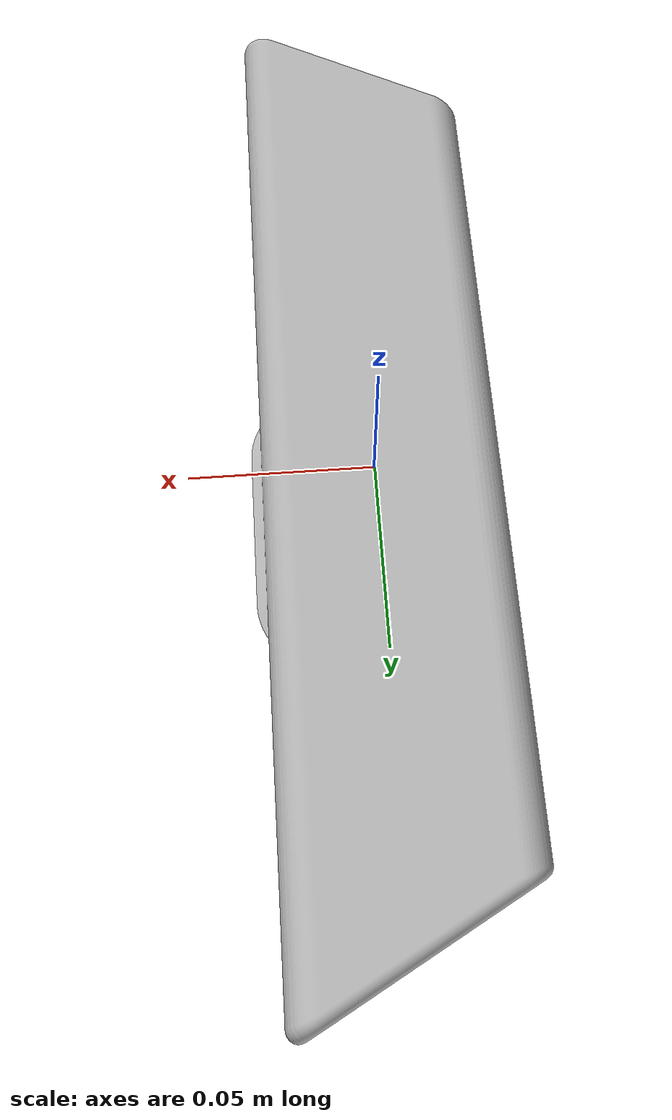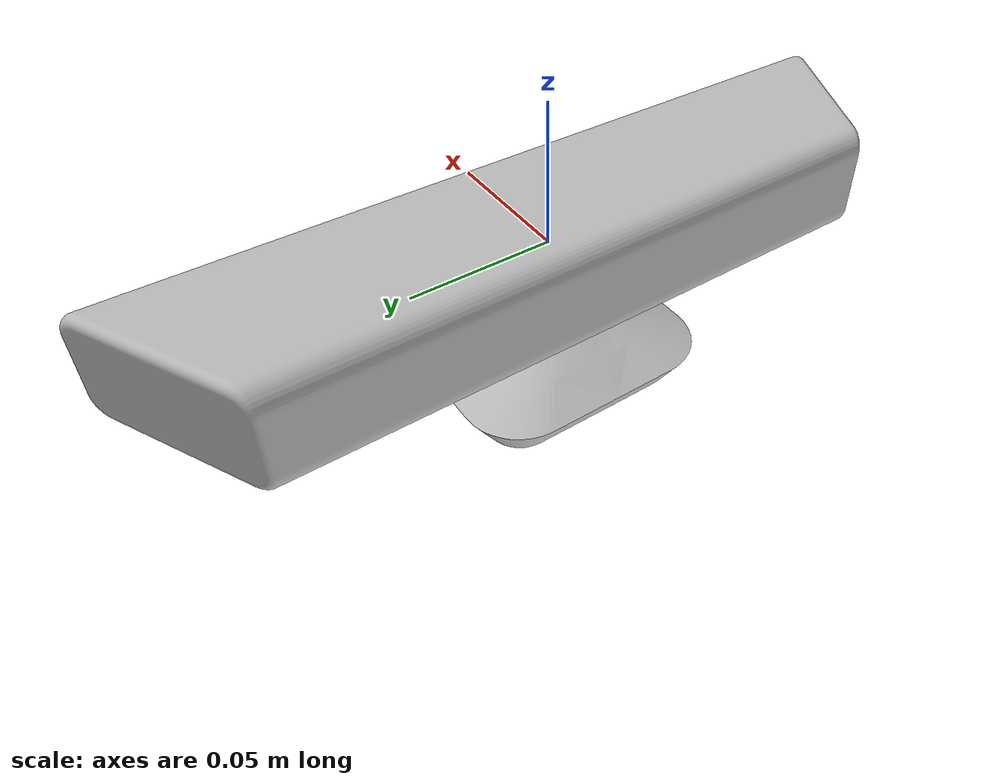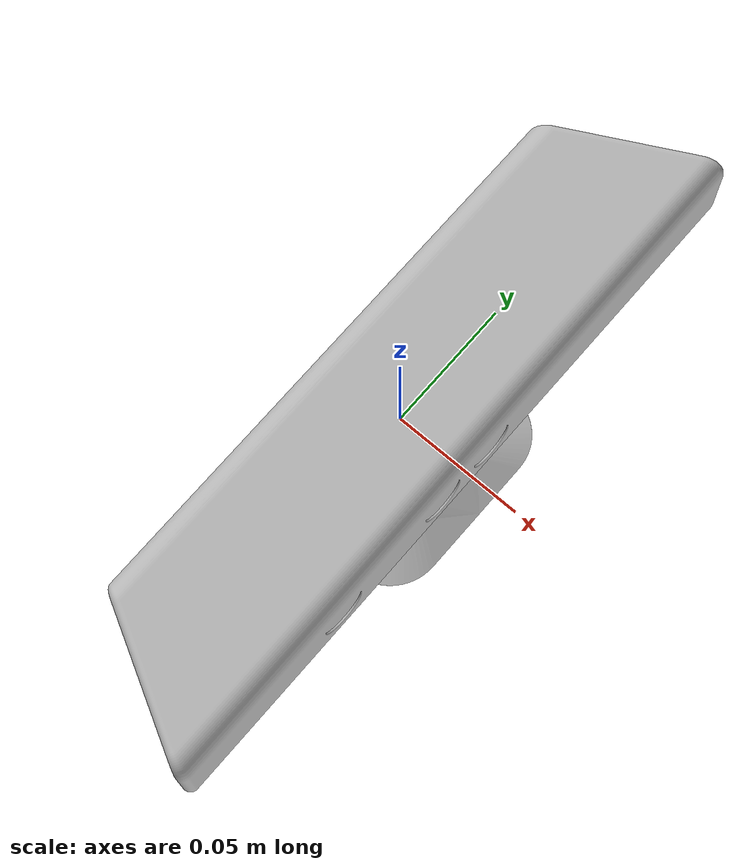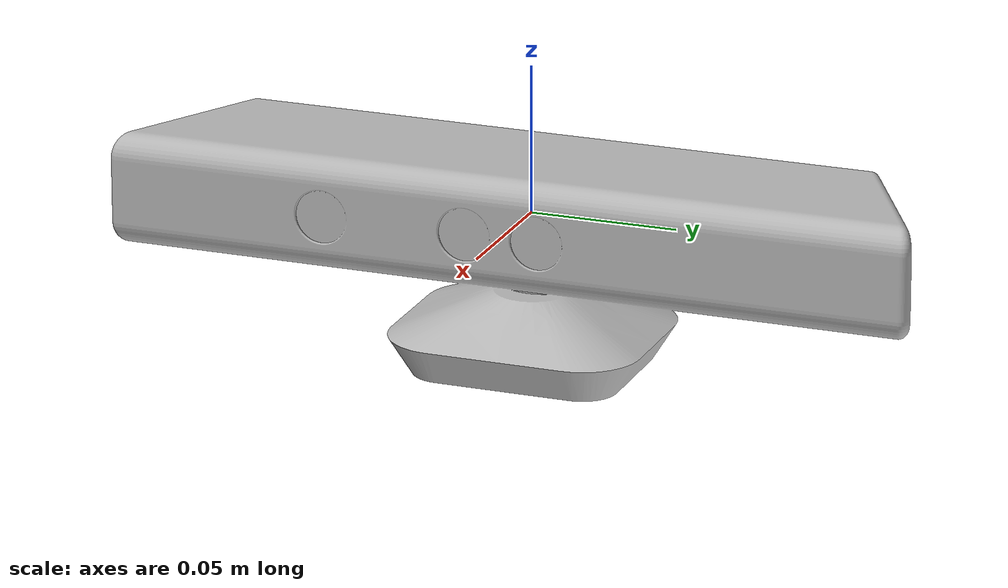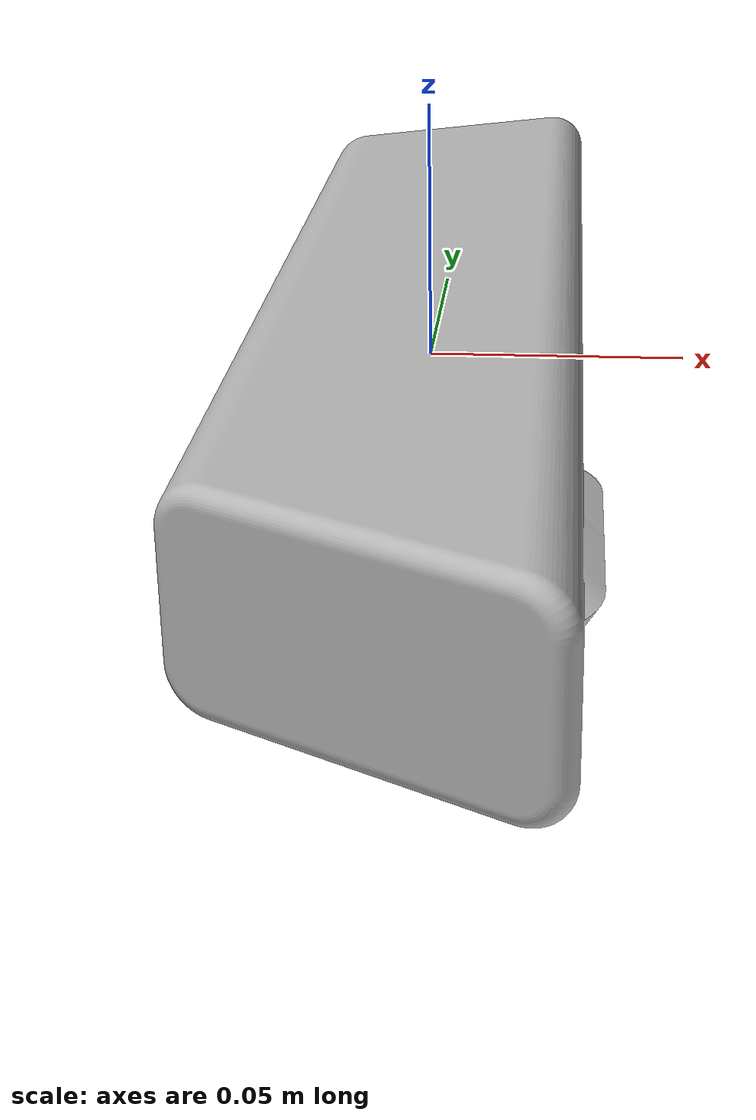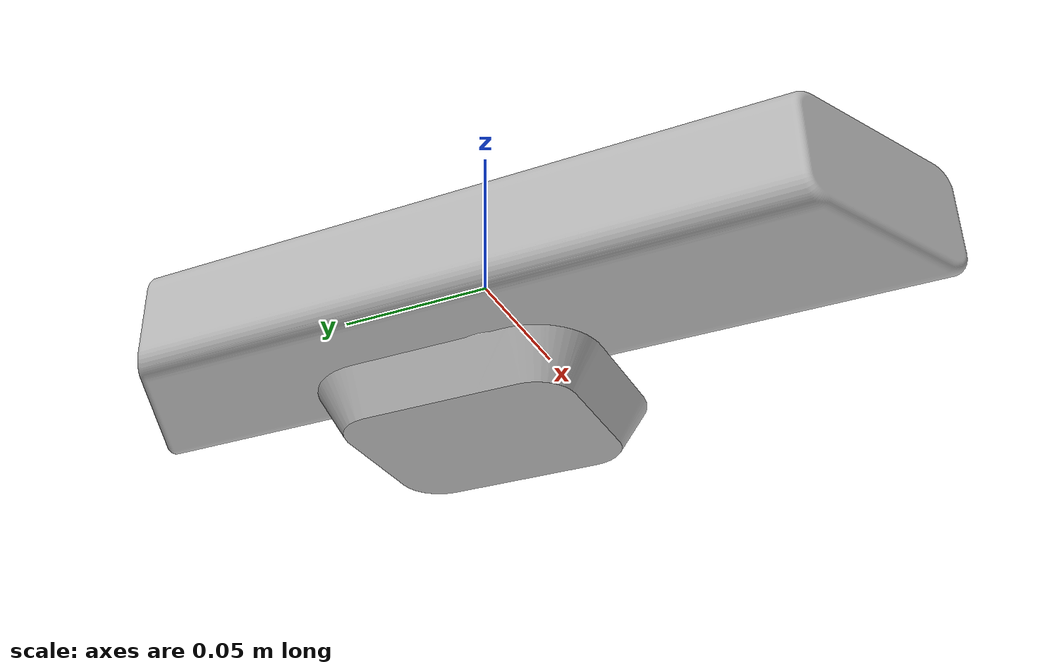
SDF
<?xml version="1.0" ?>
<sdf version="1.5">
  <model name="depth">
  	<pose>0 0 0 -1.5707963267948966 0 -1.5707963267948966</pose>
    <link name="link">
      <visual name="visual">
        <geometry>
          <mesh>
            <uri>model://depth/meshes/depth.dae</uri>
          </mesh>
        </geometry>
      </visual>
      <sensor name="camera" type="depth">
        <plugin filename="libgazebo_ros_depth_camera.so" name="depth_camera_plugin" />
      	<pose>0 0 0 0 -1.5707963267948966 1.5707963267948966</pose>
        <update_rate>10</update_rate>
        <camera>
          <horizontal_fov>1.047198</horizontal_fov>
          <image>
            <width>640</width>
            <height>480</height>
          </image>
          <clip>
            <near>0.05</near>
            <far>2</far>
          </clip>
            <depth_camera>
            <output>points</output> <!-- points depths-->
           </depth_camera>
        </camera>
      </sensor>
    </link>
  </model>
</sdf>
